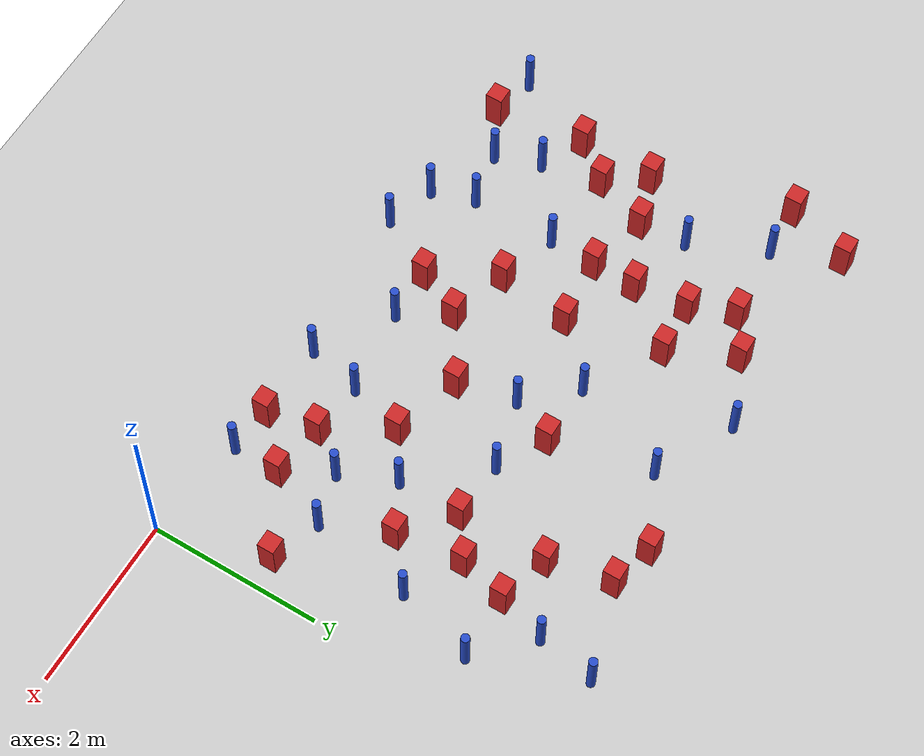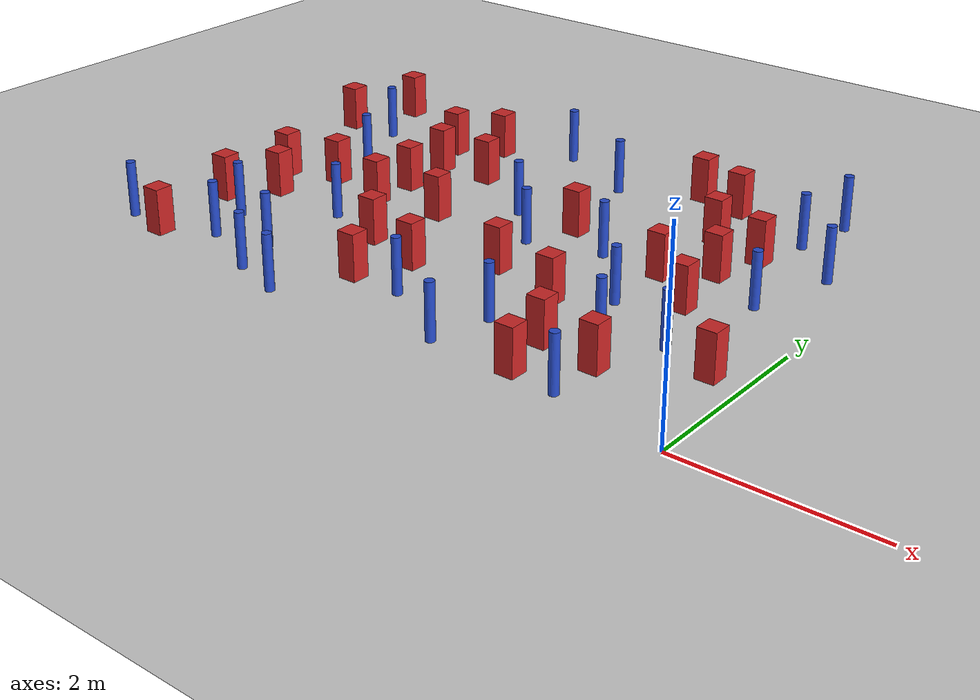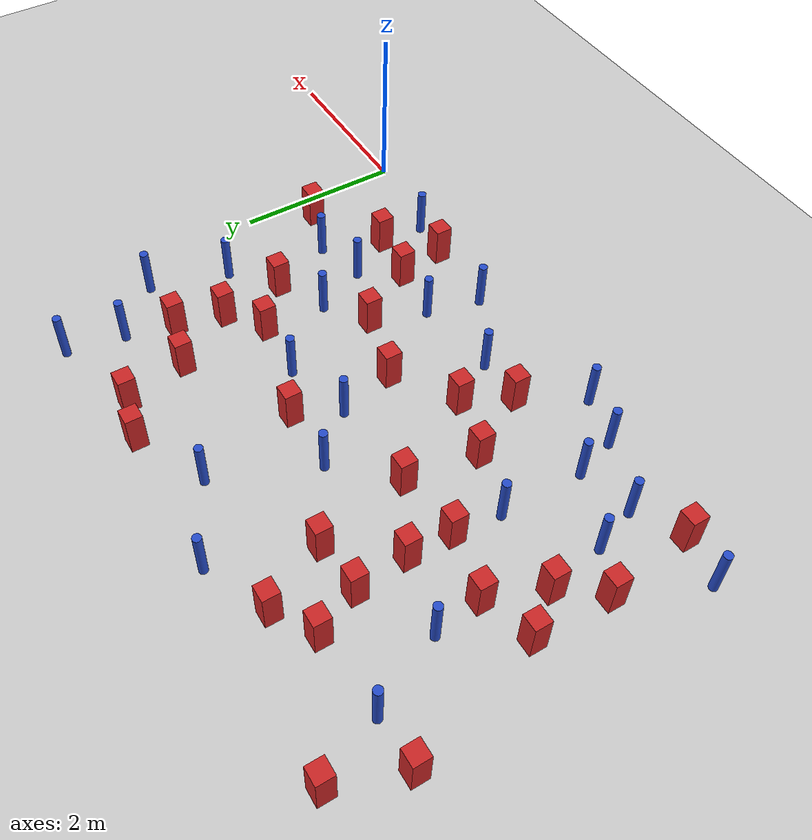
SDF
<sdf version="1.6">
 <world name="default">
  <model name="ground_plane">
   <static>1</static>
   <link name="link">
    <collision name="collision">
     <geometry><plane><normal>0 0 1</normal><size>100 100</size></plane></geometry>
     <surface><friction><ode><mu>100</mu><mu2>50</mu2></ode></friction></surface>
    </collision>
    <visual name="visual">
     <cast_shadows>0</cast_shadows>
     <geometry><plane><normal>0 0 1</normal><size>100 100</size></plane></geometry>
     <material>
      <ambient>1.0 1.0 1.0 1.0</ambient>
      <diffuse>0.8 0.8 0.8 1.0</diffuse>
      <specular>0.01 0.01 0.01 1.000000</specular>
     </material>
    </visual>
   </link>
  </model>
  <model name="square_post_obstacle3">
   <static>true</static>
   <pose>-4.63655862718 3.54686875721 8.22691968438e-08 7.2212513382e-06 -7.54495500217e-07 2.29674213826e-05</pose>
   <link name="link">
    <pose>0 0 0.25 0 -0 0</pose>
    <inertial>
     <mass>100</mass>
     <inertia>
      <ixx>0.166667</ixx>
      <ixy>0</ixy>
      <ixz>0</ixz>
      <iyy>0.166667</iyy>
      <iyz>0</iyz>
      <izz>0.166667</izz>
     </inertia>
    </inertial>
    <collision name="collision"><geometry><box><size>.2 .2 .5</size></box></geometry></collision>
    <visual name="visual">
     <geometry><box><size>.2 .2 .5</size></box></geometry>
     <material>
      <script><name>Gazebo/Red</name><uri>file://media/materials/scripts/gazebo.material</uri></script>
     </material>
    </visual>
   </link>
  </model>
  <model name="square_post_obstacle15">
   <static>true</static>
   <pose>-5.24015183878 3.50548727674 8.22691968438e-08 7.2212513382e-06 -7.54495500217e-07 2.29674213826e-05</pose>
   <link name="link">
    <pose>0 0 0.25 0 -0 0</pose>
    <inertial>
     <mass>100</mass>
     <inertia>
      <ixx>0.166667</ixx>
      <ixy>0</ixy>
      <ixz>0</ixz>
      <iyy>0.166667</iyy>
      <iyz>0</iyz>
      <izz>0.166667</izz>
     </inertia>
    </inertial>
    <collision name="collision"><geometry><box><size>.2 .2 .5</size></box></geometry></collision>
    <visual name="visual">
     <geometry><box><size>.2 .2 .5</size></box></geometry>
     <material>
      <script><name>Gazebo/Red</name><uri>file://media/materials/scripts/gazebo.material</uri></script>
     </material>
    </visual>
   </link>
  </model>
  <model name="square_post_obstacle16">
   <static>true</static>
   <pose>-3.82299562267 1.35734232729 8.22691968438e-08 7.2212513382e-06 -7.54495500217e-07 2.29674213826e-05</pose>
   <link name="link">
    <pose>0 0 0.25 0 -0 0</pose>
    <inertial>
     <mass>100</mass>
     <inertia>
      <ixx>0.166667</ixx>
      <ixy>0</ixy>
      <ixz>0</ixz>
      <iyy>0.166667</iyy>
      <iyz>0</iyz>
      <izz>0.166667</izz>
     </inertia>
    </inertial>
    <collision name="collision"><geometry><box><size>.2 .2 .5</size></box></geometry></collision>
    <visual name="visual">
     <geometry><box><size>.2 .2 .5</size></box></geometry>
     <material>
      <script><name>Gazebo/Red</name><uri>file://media/materials/scripts/gazebo.material</uri></script>
     </material>
    </visual>
   </link>
  </model>
  <model name="square_post_obstacle22">
   <static>true</static>
   <pose>-6.6949630996 4.68436542248 8.22691968438e-08 7.22125133819e-06 -7.54495500217e-07 2.29674213826e-05</pose>
   <link name="link">
    <pose>0 0 0.25 0 -0 0</pose>
    <inertial>
     <mass>100</mass>
     <inertia>
      <ixx>0.166667</ixx>
      <ixy>0</ixy>
      <ixz>0</ixz>
      <iyy>0.166667</iyy>
      <iyz>0</iyz>
      <izz>0.166667</izz>
     </inertia>
    </inertial>
    <collision name="collision"><geometry><box><size>.2 .2 .5</size></box></geometry></collision>
    <visual name="visual">
     <geometry><box><size>.2 .2 .5</size></box></geometry>
     <material>
      <script><name>Gazebo/Red</name><uri>file://media/materials/scripts/gazebo.material</uri></script>
     </material>
    </visual>
   </link>
  </model>
  <model name="pole_obstacle16">
   <static>true</static>
   <pose>-5.22550712761 1.77969088036 2.88873142074e-08 -9.90536689445e-09 4.60219948999e-07 -1.20965994956e-07</pose>
   <link name="link">
    <pose>0 0 0.3 0 -0 0</pose>
    <inertial>
     <mass>1</mass>
     <inertia><ixx>0.145833</ixx><ixy>0</ixy><ixz>0</ixz><iyy>0.145833</iyy><iyz>0</iyz><izz>0.125</izz></inertia>
    </inertial>
    <collision name="collision">
     <geometry><cylinder><radius>0.05</radius><length>.6</length></cylinder></geometry>
    </collision>
    <visual name="visual">
     <geometry><cylinder><radius>0.05</radius><length>.6</length></cylinder></geometry>
     <material>
      <script><name>Gazebo/Blue</name><uri>file://media/materials/scripts/gazebo.material</uri></script>
     </material>
    </visual>
   </link>
  </model>
  <model name="square_post_obstacle24">
   <static>true</static>
   <pose>-6.38532624722 0.36992750824 8.22691968438e-08 7.2212513382e-06 -7.54495500217e-07 2.29674213826e-05</pose>
   <link name="link">
    <pose>0 0 0.25 0 -0 0</pose>
    <inertial>
     <mass>100</mass>
     <inertia>
      <ixx>0.166667</ixx>
      <ixy>0</ixy>
      <ixz>0</ixz>
      <iyy>0.166667</iyy>
      <iyz>0</iyz>
      <izz>0.166667</izz>
     </inertia>
    </inertial>
    <collision name="collision"><geometry><box><size>.2 .2 .5</size></box></geometry></collision>
    <visual name="visual">
     <geometry><box><size>.2 .2 .5</size></box></geometry>
     <material>
      <script><name>Gazebo/Red</name><uri>file://media/materials/scripts/gazebo.material</uri></script>
     </material>
    </visual>
   </link>
  </model>
  <model name="pole_obstacle24">
   <static>true</static>
   <pose>-6.38724951136 3.94498301744 2.88873142074e-08 -9.90536690245e-09 4.6021994898e-07 -1.20965994966e-07</pose>
   <link name="link">
    <pose>0 0 0.3 0 -0 0</pose>
    <inertial>
     <mass>1</mass>
     <inertia><ixx>0.145833</ixx><ixy>0</ixy><ixz>0</ixz><iyy>0.145833</iyy><iyz>0</iyz><izz>0.125</izz></inertia>
    </inertial>
    <collision name="collision">
     <geometry><cylinder><radius>0.05</radius><length>.6</length></cylinder></geometry>
    </collision>
    <visual name="visual">
     <geometry><cylinder><radius>0.05</radius><length>.6</length></cylinder></geometry>
     <material>
      <script><name>Gazebo/Blue</name><uri>file://media/materials/scripts/gazebo.material</uri></script>
     </material>
    </visual>
   </link>
  </model>
  <model name="square_post_obstacle37">
   <static>true</static>
   <pose>-4.52123844503 1.57025443564 8.22691968438e-08 7.2212513382e-06 -7.54495500217e-07 2.29674213826e-05</pose>
   <link name="link">
    <pose>0 0 0.25 0 -0 0</pose>
    <inertial>
     <mass>100</mass>
     <inertia>
      <ixx>0.166667</ixx>
      <ixy>0</ixy>
      <ixz>0</ixz>
      <iyy>0.166667</iyy>
      <iyz>0</iyz>
      <izz>0.166667</izz>
     </inertia>
    </inertial>
    <collision name="collision"><geometry><box><size>.2 .2 .5</size></box></geometry></collision>
    <visual name="visual">
     <geometry><box><size>.2 .2 .5</size></box></geometry>
     <material>
      <script><name>Gazebo/Red</name><uri>file://media/materials/scripts/gazebo.material</uri></script>
     </material>
    </visual>
   </link>
  </model>
  <model name="square_post_obstacle53">
   <static>true</static>
   <pose>-1.79335235319 3.72912004913 8.22691968438e-08 7.2212513382e-06 -7.54495500217e-07 2.29674213826e-05</pose>
   <link name="link">
    <pose>0 0 0.25 0 -0 0</pose>
    <inertial>
     <mass>100</mass>
     <inertia>
      <ixx>0.166667</ixx>
      <ixy>0</ixy>
      <ixz>0</ixz>
      <iyy>0.166667</iyy>
      <iyz>0</iyz>
      <izz>0.166667</izz>
     </inertia>
    </inertial>
    <collision name="collision"><geometry><box><size>.2 .2 .5</size></box></geometry></collision>
    <visual name="visual">
     <geometry><box><size>.2 .2 .5</size></box></geometry>
     <material>
      <script><name>Gazebo/Red</name><uri>file://media/materials/scripts/gazebo.material</uri></script>
     </material>
    </visual>
   </link>
  </model>
  <model name="pole_obstacle55">
   <static>true</static>
   <pose>-0.719642977251 2.6480459213 2.88873142074e-08 -9.90536689636e-09 4.60219948994e-07 -1.20965994958e-07</pose>
   <link name="link">
    <pose>0 0 0.3 0 -0 0</pose>
    <inertial>
     <mass>1</mass>
     <inertia><ixx>0.145833</ixx><ixy>0</ixy><ixz>0</ixz><iyy>0.145833</iyy><iyz>0</iyz><izz>0.125</izz></inertia>
    </inertial>
    <collision name="collision">
     <geometry><cylinder><radius>0.05</radius><length>.6</length></cylinder></geometry>
    </collision>
    <visual name="visual">
     <geometry><cylinder><radius>0.05</radius><length>.6</length></cylinder></geometry>
     <material>
      <script><name>Gazebo/Blue</name><uri>file://media/materials/scripts/gazebo.material</uri></script>
     </material>
    </visual>
   </link>
  </model>
  <model name="pole_obstacle57">
   <static>true</static>
   <pose>-0.920309925064 1.45687510148 2.88873142074e-08 -9.90536689855e-09 4.60219948989e-07 -1.20965994962e-07</pose>
   <link name="link">
    <pose>0 0 0.3 0 -0 0</pose>
    <inertial>
     <mass>1</mass>
     <inertia><ixx>0.145833</ixx><ixy>0</ixy><ixz>0</ixz><iyy>0.145833</iyy><iyz>0</iyz><izz>0.125</izz></inertia>
    </inertial>
    <collision name="collision">
     <geometry><cylinder><radius>0.05</radius><length>.6</length></cylinder></geometry>
    </collision>
    <visual name="visual">
     <geometry><cylinder><radius>0.05</radius><length>.6</length></cylinder></geometry>
     <material>
      <script><name>Gazebo/Blue</name><uri>file://media/materials/scripts/gazebo.material</uri></script>
     </material>
    </visual>
   </link>
  </model>
  <model name="pole_obstacle59">
   <static>true</static>
   <pose>-3.50369283603 0.793164883033 2.88873142074e-08 -9.90536689285e-09 4.60219949002e-07 -1.20965994953e-07</pose>
   <link name="link">
    <pose>0 0 0.3 0 -0 0</pose>
    <inertial>
     <mass>1</mass>
     <inertia><ixx>0.145833</ixx><ixy>0</ixy><ixz>0</ixz><iyy>0.145833</iyy><iyz>0</iyz><izz>0.125</izz></inertia>
    </inertial>
    <collision name="collision">
     <geometry><cylinder><radius>0.05</radius><length>.6</length></cylinder></geometry>
    </collision>
    <visual name="visual">
     <geometry><cylinder><radius>0.05</radius><length>.6</length></cylinder></geometry>
     <material>
      <script><name>Gazebo/Blue</name><uri>file://media/materials/scripts/gazebo.material</uri></script>
     </material>
    </visual>
   </link>
  </model>
  <model name="square_post_obstacle67">
   <static>true</static>
   <pose>-3.03487579687 3.02186459462 8.22691968438e-08 7.2212513382e-06 -7.54495500217e-07 2.29674213826e-05</pose>
   <link name="link">
    <pose>0 0 0.25 0 -0 0</pose>
    <inertial>
     <mass>100</mass>
     <inertia>
      <ixx>0.166667</ixx>
      <ixy>0</ixy>
      <ixz>0</ixz>
      <iyy>0.166667</iyy>
      <iyz>0</iyz>
      <izz>0.166667</izz>
     </inertia>
    </inertial>
    <collision name="collision"><geometry><box><size>.2 .2 .5</size></box></geometry></collision>
    <visual name="visual">
     <geometry><box><size>.2 .2 .5</size></box></geometry>
     <material>
      <script><name>Gazebo/Red</name><uri>file://media/materials/scripts/gazebo.material</uri></script>
     </material>
    </visual>
   </link>
  </model>
  <model name="pole_obstacle67">
   <static>true</static>
   <pose>-6.92081475753 0.477294244467 2.88873142074e-08 -9.90536689483e-09 4.60219948998e-07 -1.20965994956e-07</pose>
   <link name="link">
    <pose>0 0 0.3 0 -0 0</pose>
    <inertial>
     <mass>1</mass>
     <inertia><ixx>0.145833</ixx><ixy>0</ixy><ixz>0</ixz><iyy>0.145833</iyy><iyz>0</iyz><izz>0.125</izz></inertia>
    </inertial>
    <collision name="collision">
     <geometry><cylinder><radius>0.05</radius><length>.6</length></cylinder></geometry>
    </collision>
    <visual name="visual">
     <geometry><cylinder><radius>0.05</radius><length>.6</length></cylinder></geometry>
     <material>
      <script><name>Gazebo/Blue</name><uri>file://media/materials/scripts/gazebo.material</uri></script>
     </material>
    </visual>
   </link>
  </model>
  <model name="square_post_obstacle73">
   <static>true</static>
   <pose>-1.7288285816 0.263005848458 8.22691968438e-08 7.22125133819e-06 -7.54495500217e-07 2.29674213826e-05</pose>
   <link name="link">
    <pose>0 0 0.25 0 -0 0</pose>
    <inertial>
     <mass>100</mass>
     <inertia>
      <ixx>0.166667</ixx>
      <ixy>0</ixy>
      <ixz>0</ixz>
      <iyy>0.166667</iyy>
      <iyz>0</iyz>
      <izz>0.166667</izz>
     </inertia>
    </inertial>
    <collision name="collision"><geometry><box><size>.2 .2 .5</size></box></geometry></collision>
    <visual name="visual">
     <geometry><box><size>.2 .2 .5</size></box></geometry>
     <material>
      <script><name>Gazebo/Red</name><uri>file://media/materials/scripts/gazebo.material</uri></script>
     </material>
    </visual>
   </link>
  </model>
  <model name="pole_obstacle74">
   <static>true</static>
   <pose>-4.24889739048 4.64374005165 2.88873142074e-08 -9.90536690842e-09 4.60219948965e-07 -1.20965994976e-07</pose>
   <link name="link">
    <pose>0 0 0.3 0 -0 0</pose>
    <inertial>
     <mass>1</mass>
     <inertia><ixx>0.145833</ixx><ixy>0</ixy><ixz>0</ixz><iyy>0.145833</iyy><iyz>0</iyz><izz>0.125</izz></inertia>
    </inertial>
    <collision name="collision">
     <geometry><cylinder><radius>0.05</radius><length>.6</length></cylinder></geometry>
    </collision>
    <visual name="visual">
     <geometry><cylinder><radius>0.05</radius><length>.6</length></cylinder></geometry>
     <material>
      <script><name>Gazebo/Blue</name><uri>file://media/materials/scripts/gazebo.material</uri></script>
     </material>
    </visual>
   </link>
  </model>
  <model name="pole_obstacle79">
   <static>true</static>
   <pose>-3.31451127645 4.1940585945 2.88873142074e-08 -9.90536689859e-09 4.60219948989e-07 -1.20965994961e-07</pose>
   <link name="link">
    <pose>0 0 0.3 0 -0 0</pose>
    <inertial>
     <mass>1</mass>
     <inertia><ixx>0.145833</ixx><ixy>0</ixy><ixz>0</ixz><iyy>0.145833</iyy><iyz>0</iyz><izz>0.125</izz></inertia>
    </inertial>
    <collision name="collision">
     <geometry><cylinder><radius>0.05</radius><length>.6</length></cylinder></geometry>
    </collision>
    <visual name="visual">
     <geometry><cylinder><radius>0.05</radius><length>.6</length></cylinder></geometry>
     <material>
      <script><name>Gazebo/Blue</name><uri>file://media/materials/scripts/gazebo.material</uri></script>
     </material>
    </visual>
   </link>
  </model>
  <model name="square_post_obstacle78">
   <static>true</static>
   <pose>-6.17166210652 1.87490847582 8.22691968438e-08 7.2212513382e-06 -7.54495500217e-07 2.29674213826e-05</pose>
   <link name="link">
    <pose>0 0 0.25 0 -0 0</pose>
    <inertial>
     <mass>100</mass>
     <inertia>
      <ixx>0.166667</ixx>
      <ixy>0</ixy>
      <ixz>0</ixz>
      <iyy>0.166667</iyy>
      <iyz>0</iyz>
      <izz>0.166667</izz>
     </inertia>
    </inertial>
    <collision name="collision"><geometry><box><size>.2 .2 .5</size></box></geometry></collision>
    <visual name="visual">
     <geometry><box><size>.2 .2 .5</size></box></geometry>
     <material>
      <script><name>Gazebo/Red</name><uri>file://media/materials/scripts/gazebo.material</uri></script>
     </material>
    </visual>
   </link>
  </model>
  <model name="square_post_obstacle79">
   <static>true</static>
   <pose>-1.2349886252 2.2230134717 8.22691968438e-08 7.2212513382e-06 -7.54495500217e-07 2.29674213826e-05</pose>
   <link name="link">
    <pose>0 0 0.25 0 -0 0</pose>
    <inertial>
     <mass>100</mass>
     <inertia>
      <ixx>0.166667</ixx>
      <ixy>0</ixy>
      <ixz>0</ixz>
      <iyy>0.166667</iyy>
      <iyz>0</iyz>
      <izz>0.166667</izz>
     </inertia>
    </inertial>
    <collision name="collision"><geometry><box><size>.2 .2 .5</size></box></geometry></collision>
    <visual name="visual">
     <geometry><box><size>.2 .2 .5</size></box></geometry>
     <material>
      <script><name>Gazebo/Red</name><uri>file://media/materials/scripts/gazebo.material</uri></script>
     </material>
    </visual>
   </link>
  </model>
  <model name="pole_obstacle81">
   <static>true</static>
   <pose>-1.79040666253 1.92458127733 2.88873142074e-08 -9.90536689672e-09 4.60219948993e-07 -1.20965994959e-07</pose>
   <link name="link">
    <pose>0 0 0.3 0 -0 0</pose>
    <inertial>
     <mass>1</mass>
     <inertia><ixx>0.145833</ixx><ixy>0</ixy><ixz>0</ixz><iyy>0.145833</iyy><iyz>0</iyz><izz>0.125</izz></inertia>
    </inertial>
    <collision name="collision">
     <geometry><cylinder><radius>0.05</radius><length>.6</length></cylinder></geometry>
    </collision>
    <visual name="visual">
     <geometry><cylinder><radius>0.05</radius><length>.6</length></cylinder></geometry>
     <material>
      <script><name>Gazebo/Blue</name><uri>file://media/materials/scripts/gazebo.material</uri></script>
     </material>
    </visual>
   </link>
  </model>
  <model name="square_post_obstacle80">
   <static>true</static>
   <pose>-4.40252415549 2.4362432793 8.22691968438e-08 7.2212513382e-06 -7.54495500217e-07 2.29674213826e-05</pose>
   <link name="link">
    <pose>0 0 0.25 0 -0 0</pose>
    <inertial>
     <mass>100</mass>
     <inertia>
      <ixx>0.166667</ixx>
      <ixy>0</ixy>
      <ixz>0</ixz>
      <iyy>0.166667</iyy>
      <iyz>0</iyz>
      <izz>0.166667</izz>
     </inertia>
    </inertial>
    <collision name="collision"><geometry><box><size>.2 .2 .5</size></box></geometry></collision>
    <visual name="visual">
     <geometry><box><size>.2 .2 .5</size></box></geometry>
     <material>
      <script><name>Gazebo/Red</name><uri>file://media/materials/scripts/gazebo.material</uri></script>
     </material>
    </visual>
   </link>
  </model>
  <model name="pole_obstacle88">
   <static>true</static>
   <pose>-1.51261089341 1.29583131094 2.88873142074e-08 -9.90536689672e-09 4.60219948993e-07 -1.20965994959e-07</pose>
   <link name="link">
    <pose>0 0 0.3 0 -0 0</pose>
    <inertial>
     <mass>1</mass>
     <inertia><ixx>0.145833</ixx><ixy>0</ixy><ixz>0</ixz><iyy>0.145833</iyy><iyz>0</iyz><izz>0.125</izz></inertia>
    </inertial>
    <collision name="collision">
     <geometry><cylinder><radius>0.05</radius><length>.6</length></cylinder></geometry>
    </collision>
    <visual name="visual">
     <geometry><cylinder><radius>0.05</radius><length>.6</length></cylinder></geometry>
     <material>
      <script><name>Gazebo/Blue</name><uri>file://media/materials/scripts/gazebo.material</uri></script>
     </material>
    </visual>
   </link>
  </model>
  <model name="pole_obstacle96">
   <static>true</static>
   <pose>-0.912774800326 4.80418720734 2.88873142074e-08 -9.90536689661e-09 4.60219948993e-07 -1.20965994957e-07</pose>
   <link name="link">
    <pose>0 0 0.3 0 -0 0</pose>
    <inertial>
     <mass>1</mass>
     <inertia><ixx>0.145833</ixx><ixy>0</ixy><ixz>0</ixz><iyy>0.145833</iyy><iyz>0</iyz><izz>0.125</izz></inertia>
    </inertial>
    <collision name="collision">
     <geometry><cylinder><radius>0.05</radius><length>.6</length></cylinder></geometry>
    </collision>
    <visual name="visual">
     <geometry><cylinder><radius>0.05</radius><length>.6</length></cylinder></geometry>
     <material>
      <script><name>Gazebo/Blue</name><uri>file://media/materials/scripts/gazebo.material</uri></script>
     </material>
    </visual>
   </link>
  </model>
  <model name="square_post_obstacle85">
   <static>true</static>
   <pose>-6.50095038086 2.33451242014 8.22691968438e-08 7.2212513382e-06 -7.54495500217e-07 2.29674213826e-05</pose>
   <link name="link">
    <pose>0 0 0.25 0 -0 0</pose>
    <inertial>
     <mass>100</mass>
     <inertia>
      <ixx>0.166667</ixx>
      <ixy>0</ixy>
      <ixz>0</ixz>
      <iyy>0.166667</iyy>
      <iyz>0</iyz>
      <izz>0.166667</izz>
     </inertia>
    </inertial>
    <collision name="collision"><geometry><box><size>.2 .2 .5</size></box></geometry></collision>
    <visual name="visual">
     <geometry><box><size>.2 .2 .5</size></box></geometry>
     <material>
      <script><name>Gazebo/Red</name><uri>file://media/materials/scripts/gazebo.material</uri></script>
     </material>
    </visual>
   </link>
  </model>
  <model name="pole_obstacle103">
   <static>true</static>
   <pose>-2.48072139473 2.71462574397 2.88873142074e-08 -9.90536690232e-09 4.6021994898e-07 -1.20965994968e-07</pose>
   <link name="link">
    <pose>0 0 0.3 0 -0 0</pose>
    <inertial>
     <mass>1</mass>
     <inertia><ixx>0.145833</ixx><ixy>0</ixy><ixz>0</ixz><iyy>0.145833</iyy><iyz>0</iyz><izz>0.125</izz></inertia>
    </inertial>
    <collision name="collision">
     <geometry><cylinder><radius>0.05</radius><length>.6</length></cylinder></geometry>
    </collision>
    <visual name="visual">
     <geometry><cylinder><radius>0.05</radius><length>.6</length></cylinder></geometry>
     <material>
      <script><name>Gazebo/Blue</name><uri>file://media/materials/scripts/gazebo.material</uri></script>
     </material>
    </visual>
   </link>
  </model>
  <model name="pole_obstacle105">
   <static>true</static>
   <pose>-1.2133949386 0.196896426758 2.88873142074e-08 -9.90536689986e-09 4.60219948986e-07 -1.20965994962e-07</pose>
   <link name="link">
    <pose>0 0 0.3 0 -0 0</pose>
    <inertial>
     <mass>1</mass>
     <inertia><ixx>0.145833</ixx><ixy>0</ixy><ixz>0</ixz><iyy>0.145833</iyy><iyz>0</iyz><izz>0.125</izz></inertia>
    </inertial>
    <collision name="collision">
     <geometry><cylinder><radius>0.05</radius><length>.6</length></cylinder></geometry>
    </collision>
    <visual name="visual">
     <geometry><cylinder><radius>0.05</radius><length>.6</length></cylinder></geometry>
     <material>
      <script><name>Gazebo/Blue</name><uri>file://media/materials/scripts/gazebo.material</uri></script>
     </material>
    </visual>
   </link>
  </model>
  <model name="pole_obstacle109">
   <static>true</static>
   <pose>-2.643982476 0.27305697961 2.88873142074e-08 -9.90536689488e-09 4.60219948997e-07 -1.20965994956e-07</pose>
   <link name="link">
    <pose>0 0 0.3 0 -0 0</pose>
    <inertial>
     <mass>1</mass>
     <inertia><ixx>0.145833</ixx><ixy>0</ixy><ixz>0</ixz><iyy>0.145833</iyy><iyz>0</iyz><izz>0.125</izz></inertia>
    </inertial>
    <collision name="collision">
     <geometry><cylinder><radius>0.05</radius><length>.6</length></cylinder></geometry>
    </collision>
    <visual name="visual">
     <geometry><cylinder><radius>0.05</radius><length>.6</length></cylinder></geometry>
     <material>
      <script><name>Gazebo/Blue</name><uri>file://media/materials/scripts/gazebo.material</uri></script>
     </material>
    </visual>
   </link>
  </model>
  <model name="square_post_obstacle97">
   <static>true</static>
   <pose>-3.10668395982 1.82074510027 8.22691968438e-08 7.22125133819e-06 -7.54495500217e-07 2.29674213826e-05</pose>
   <link name="link">
    <pose>0 0 0.25 0 -0 0</pose>
    <inertial>
     <mass>100</mass>
     <inertia>
      <ixx>0.166667</ixx>
      <ixy>0</ixy>
      <ixz>0</ixz>
      <iyy>0.166667</iyy>
      <iyz>0</iyz>
      <izz>0.166667</izz>
     </inertia>
    </inertial>
    <collision name="collision"><geometry><box><size>.2 .2 .5</size></box></geometry></collision>
    <visual name="visual">
     <geometry><box><size>.2 .2 .5</size></box></geometry>
     <material>
      <script><name>Gazebo/Red</name><uri>file://media/materials/scripts/gazebo.material</uri></script>
     </material>
    </visual>
   </link>
  </model>
  <model name="pole_obstacle115">
   <static>true</static>
   <pose>-3.78685906643 3.02902158172 2.88873142074e-08 -9.90536690232e-09 4.6021994898e-07 -1.20965994968e-07</pose>
   <link name="link">
    <pose>0 0 0.3 0 -0 0</pose>
    <inertial>
     <mass>1</mass>
     <inertia><ixx>0.145833</ixx><ixy>0</ixy><ixz>0</ixz><iyy>0.145833</iyy><iyz>0</iyz><izz>0.125</izz></inertia>
    </inertial>
    <collision name="collision">
     <geometry><cylinder><radius>0.05</radius><length>.6</length></cylinder></geometry>
    </collision>
    <visual name="visual">
     <geometry><cylinder><radius>0.05</radius><length>.6</length></cylinder></geometry>
     <material>
      <script><name>Gazebo/Blue</name><uri>file://media/materials/scripts/gazebo.material</uri></script>
     </material>
    </visual>
   </link>
  </model>
  <model name="square_post_obstacle108">
   <static>true</static>
   <pose>-5.18404931154 2.35040392565 8.22691968438e-08 7.2212513382e-06 -7.54495500217e-07 2.29674213826e-05</pose>
   <link name="link">
    <pose>0 0 0.25 0 -0 0</pose>
    <inertial>
     <mass>100</mass>
     <inertia>
      <ixx>0.166667</ixx>
      <ixy>0</ixy>
      <ixz>0</ixz>
      <iyy>0.166667</iyy>
      <iyz>0</iyz>
      <izz>0.166667</izz>
     </inertia>
    </inertial>
    <collision name="collision"><geometry><box><size>.2 .2 .5</size></box></geometry></collision>
    <visual name="visual">
     <geometry><box><size>.2 .2 .5</size></box></geometry>
     <material>
      <script><name>Gazebo/Red</name><uri>file://media/materials/scripts/gazebo.material</uri></script>
     </material>
    </visual>
   </link>
  </model>
  <model name="square_post_obstacle109">
   <static>true</static>
   <pose>-4.08413032773 0.809103732386 8.22691968438e-08 7.2212513382e-06 -7.54495500217e-07 2.29674213826e-05</pose>
   <link name="link">
    <pose>0 0 0.25 0 -0 0</pose>
    <inertial>
     <mass>100</mass>
     <inertia>
      <ixx>0.166667</ixx>
      <ixy>0</ixy>
      <ixz>0</ixz>
      <iyy>0.166667</iyy>
      <iyz>0</iyz>
      <izz>0.166667</izz>
     </inertia>
    </inertial>
    <collision name="collision"><geometry><box><size>.2 .2 .5</size></box></geometry></collision>
    <visual name="visual">
     <geometry><box><size>.2 .2 .5</size></box></geometry>
     <material>
      <script><name>Gazebo/Red</name><uri>file://media/materials/scripts/gazebo.material</uri></script>
     </material>
    </visual>
   </link>
  </model>
  <model name="pole_obstacle126">
   <static>true</static>
   <pose>-5.98777227381 3.07618382233 2.88873142074e-08 -9.90536690245e-09 4.6021994898e-07 -1.20965994966e-07</pose>
   <link name="link">
    <pose>0 0 0.3 0 -0 0</pose>
    <inertial>
     <mass>1</mass>
     <inertia><ixx>0.145833</ixx><ixy>0</ixy><ixz>0</ixz><iyy>0.145833</iyy><iyz>0</iyz><izz>0.125</izz></inertia>
    </inertial>
    <collision name="collision">
     <geometry><cylinder><radius>0.05</radius><length>.6</length></cylinder></geometry>
    </collision>
    <visual name="visual">
     <geometry><cylinder><radius>0.05</radius><length>.6</length></cylinder></geometry>
     <material>
      <script><name>Gazebo/Blue</name><uri>file://media/materials/scripts/gazebo.material</uri></script>
     </material>
    </visual>
   </link>
  </model>
  <model name="square_post_obstacle115">
   <static>true</static>
   <pose>-2.48188384394 4.59685044135 8.22691968438e-08 7.2212513382e-06 -7.54495500217e-07 2.29674213826e-05</pose>
   <link name="link">
    <pose>0 0 0.25 0 -0 0</pose>
    <inertial>
     <mass>100</mass>
     <inertia>
      <ixx>0.166667</ixx>
      <ixy>0</ixy>
      <ixz>0</ixz>
      <iyy>0.166667</iyy>
      <iyz>0</iyz>
      <izz>0.166667</izz>
     </inertia>
    </inertial>
    <collision name="collision"><geometry><box><size>.2 .2 .5</size></box></geometry></collision>
    <visual name="visual">
     <geometry><box><size>.2 .2 .5</size></box></geometry>
     <material>
      <script><name>Gazebo/Red</name><uri>file://media/materials/scripts/gazebo.material</uri></script>
     </material>
    </visual>
   </link>
  </model>
  <model name="pole_obstacle136">
   <static>true</static>
   <pose>-4.50453976404 0.0924048402881 2.88873142074e-08 -9.90536689727e-09 4.60219948992e-07 -1.20965994958e-07</pose>
   <link name="link">
    <pose>0 0 0.3 0 -0 0</pose>
    <inertial>
     <mass>1</mass>
     <inertia><ixx>0.145833</ixx><ixy>0</ixy><ixz>0</ixz><iyy>0.145833</iyy><iyz>0</iyz><izz>0.125</izz></inertia>
    </inertial>
    <collision name="collision">
     <geometry><cylinder><radius>0.05</radius><length>.6</length></cylinder></geometry>
    </collision>
    <visual name="visual">
     <geometry><cylinder><radius>0.05</radius><length>.6</length></cylinder></geometry>
     <material>
      <script><name>Gazebo/Blue</name><uri>file://media/materials/scripts/gazebo.material</uri></script>
     </material>
    </visual>
   </link>
  </model>
  <model name="square_post_obstacle127">
   <static>true</static>
   <pose>-6.96853815434 3.922637119 8.22691968438e-08 7.22125133819e-06 -7.54495500217e-07 2.29674213826e-05</pose>
   <link name="link">
    <pose>0 0 0.25 0 -0 0</pose>
    <inertial>
     <mass>100</mass>
     <inertia>
      <ixx>0.166667</ixx>
      <ixy>0</ixy>
      <ixz>0</ixz>
      <iyy>0.166667</iyy>
      <iyz>0</iyz>
      <izz>0.166667</izz>
     </inertia>
    </inertial>
    <collision name="collision"><geometry><box><size>.2 .2 .5</size></box></geometry></collision>
    <visual name="visual">
     <geometry><box><size>.2 .2 .5</size></box></geometry>
     <material>
      <script><name>Gazebo/Red</name><uri>file://media/materials/scripts/gazebo.material</uri></script>
     </material>
    </visual>
   </link>
  </model>
  <model name="square_post_obstacle135">
   <static>true</static>
   <pose>-5.00512210501 4.30510256007 8.22691968438e-08 7.2212513382e-06 -7.54495500217e-07 2.29674213826e-05</pose>
   <link name="link">
    <pose>0 0 0.25 0 -0 0</pose>
    <inertial>
     <mass>100</mass>
     <inertia>
      <ixx>0.166667</ixx>
      <ixy>0</ixy>
      <ixz>0</ixz>
      <iyy>0.166667</iyy>
      <iyz>0</iyz>
      <izz>0.166667</izz>
     </inertia>
    </inertial>
    <collision name="collision"><geometry><box><size>.2 .2 .5</size></box></geometry></collision>
    <visual name="visual">
     <geometry><box><size>.2 .2 .5</size></box></geometry>
     <material>
      <script><name>Gazebo/Red</name><uri>file://media/materials/scripts/gazebo.material</uri></script>
     </material>
    </visual>
   </link>
  </model>
  <model name="square_post_obstacle140">
   <static>true</static>
   <pose>-1.19911993226 3.56233909956 8.22691968438e-08 7.2212513382e-06 -7.54495500217e-07 2.29674213826e-05</pose>
   <link name="link">
    <pose>0 0 0.25 0 -0 0</pose>
    <inertial>
     <mass>100</mass>
     <inertia>
      <ixx>0.166667</ixx>
      <ixy>0</ixy>
      <ixz>0</ixz>
      <iyy>0.166667</iyy>
      <iyz>0</iyz>
      <izz>0.166667</izz>
     </inertia>
    </inertial>
    <collision name="collision"><geometry><box><size>.2 .2 .5</size></box></geometry></collision>
    <visual name="visual">
     <geometry><box><size>.2 .2 .5</size></box></geometry>
     <material>
      <script><name>Gazebo/Red</name><uri>file://media/materials/scripts/gazebo.material</uri></script>
     </material>
    </visual>
   </link>
  </model>
  <model name="pole_obstacle151">
   <static>true</static>
   <pose>-5.85734745703 0.647574492016 2.88873142074e-08 -9.90536689837e-09 4.60219948989e-07 -1.2096599496e-07</pose>
   <link name="link">
    <pose>0 0 0.3 0 -0 0</pose>
    <inertial>
     <mass>1</mass>
     <inertia><ixx>0.145833</ixx><ixy>0</ixy><ixz>0</ixz><iyy>0.145833</iyy><iyz>0</iyz><izz>0.125</izz></inertia>
    </inertial>
    <collision name="collision">
     <geometry><cylinder><radius>0.05</radius><length>.6</length></cylinder></geometry>
    </collision>
    <visual name="visual">
     <geometry><cylinder><radius>0.05</radius><length>.6</length></cylinder></geometry>
     <material>
      <script><name>Gazebo/Blue</name><uri>file://media/materials/scripts/gazebo.material</uri></script>
     </material>
    </visual>
   </link>
  </model>
  <model name="pole_obstacle160">
   <static>true</static>
   <pose>-1.03267828876 4.1267311046 2.88873142074e-08 -9.90536689792e-09 4.6021994899e-07 -1.2096599496e-07</pose>
   <link name="link">
    <pose>0 0 0.3 0 -0 0</pose>
    <inertial>
     <mass>1</mass>
     <inertia><ixx>0.145833</ixx><ixy>0</ixy><ixz>0</ixz><iyy>0.145833</iyy><iyz>0</iyz><izz>0.125</izz></inertia>
    </inertial>
    <collision name="collision">
     <geometry><cylinder><radius>0.05</radius><length>.6</length></cylinder></geometry>
    </collision>
    <visual name="visual">
     <geometry><cylinder><radius>0.05</radius><length>.6</length></cylinder></geometry>
     <material>
      <script><name>Gazebo/Blue</name><uri>file://media/materials/scripts/gazebo.material</uri></script>
     </material>
    </visual>
   </link>
  </model>
  <model name="pole_obstacle162">
   <static>true</static>
   <pose>-5.23510551137 0.778714975938 2.88873142074e-08 -9.90536689837e-09 4.60219948989e-07 -1.2096599496e-07</pose>
   <link name="link">
    <pose>0 0 0.3 0 -0 0</pose>
    <inertial>
     <mass>1</mass>
     <inertia><ixx>0.145833</ixx><ixy>0</ixy><ixz>0</ixz><iyy>0.145833</iyy><iyz>0</iyz><izz>0.125</izz></inertia>
    </inertial>
    <collision name="collision">
     <geometry><cylinder><radius>0.05</radius><length>.6</length></cylinder></geometry>
    </collision>
    <visual name="visual">
     <geometry><cylinder><radius>0.05</radius><length>.6</length></cylinder></geometry>
     <material>
      <script><name>Gazebo/Blue</name><uri>file://media/materials/scripts/gazebo.material</uri></script>
     </material>
    </visual>
   </link>
  </model>
  <model name="square_post_obstacle154">
   <static>true</static>
   <pose>-1.83961044779 0.853899981612 8.22691968438e-08 7.2212513382e-06 -7.54495500217e-07 2.29674213826e-05</pose>
   <link name="link">
    <pose>0 0 0.25 0 -0 0</pose>
    <inertial>
     <mass>100</mass>
     <inertia>
      <ixx>0.166667</ixx>
      <ixy>0</ixy>
      <ixz>0</ixz>
      <iyy>0.166667</iyy>
      <iyz>0</iyz>
      <izz>0.166667</izz>
     </inertia>
    </inertial>
    <collision name="collision"><geometry><box><size>.2 .2 .5</size></box></geometry></collision>
    <visual name="visual">
     <geometry><box><size>.2 .2 .5</size></box></geometry>
     <material>
      <script><name>Gazebo/Red</name><uri>file://media/materials/scripts/gazebo.material</uri></script>
     </material>
    </visual>
   </link>
  </model>
  <model name="pole_obstacle166">
   <static>true</static>
   <pose>-2.48657062884 0.915723214044 2.88873142074e-08 -9.90536689285e-09 4.60219949002e-07 -1.20965994953e-07</pose>
   <link name="link">
    <pose>0 0 0.3 0 -0 0</pose>
    <inertial>
     <mass>1</mass>
     <inertia><ixx>0.145833</ixx><ixy>0</ixy><ixz>0</ixz><iyy>0.145833</iyy><iyz>0</iyz><izz>0.125</izz></inertia>
    </inertial>
    <collision name="collision">
     <geometry><cylinder><radius>0.05</radius><length>.6</length></cylinder></geometry>
    </collision>
    <visual name="visual">
     <geometry><cylinder><radius>0.05</radius><length>.6</length></cylinder></geometry>
     <material>
      <script><name>Gazebo/Blue</name><uri>file://media/materials/scripts/gazebo.material</uri></script>
     </material>
    </visual>
   </link>
  </model>
  <model name="pole_obstacle183">
   <static>true</static>
   <pose>-5.0762461588 0.277323681615 2.88873142074e-08 -9.90536689883e-09 4.60219948988e-07 -1.20965994961e-07</pose>
   <link name="link">
    <pose>0 0 0.3 0 -0 0</pose>
    <inertial>
     <mass>1</mass>
     <inertia><ixx>0.145833</ixx><ixy>0</ixy><ixz>0</ixz><iyy>0.145833</iyy><iyz>0</iyz><izz>0.125</izz></inertia>
    </inertial>
    <collision name="collision">
     <geometry><cylinder><radius>0.05</radius><length>.6</length></cylinder></geometry>
    </collision>
    <visual name="visual">
     <geometry><cylinder><radius>0.05</radius><length>.6</length></cylinder></geometry>
     <material>
      <script><name>Gazebo/Blue</name><uri>file://media/materials/scripts/gazebo.material</uri></script>
     </material>
    </visual>
   </link>
  </model>
  <model name="pole_obstacle186">
   <static>true</static>
   <pose>-0.45341584337 3.56816219546 2.88873142074e-08 -9.90536689335e-09 4.60219949001e-07 -1.20965994953e-07</pose>
   <link name="link">
    <pose>0 0 0.3 0 -0 0</pose>
    <inertial>
     <mass>1</mass>
     <inertia><ixx>0.145833</ixx><ixy>0</ixy><ixz>0</ixz><iyy>0.145833</iyy><iyz>0</iyz><izz>0.125</izz></inertia>
    </inertial>
    <collision name="collision">
     <geometry><cylinder><radius>0.05</radius><length>.6</length></cylinder></geometry>
    </collision>
    <visual name="visual">
     <geometry><cylinder><radius>0.05</radius><length>.6</length></cylinder></geometry>
     <material>
      <script><name>Gazebo/Blue</name><uri>file://media/materials/scripts/gazebo.material</uri></script>
     </material>
    </visual>
   </link>
  </model>
  <model name="square_post_obstacle179">
   <static>true</static>
   <pose>-6.52680261235 1.42994523384 8.22691968438e-08 7.2212513382e-06 -7.54495500217e-07 2.29674213826e-05</pose>
   <link name="link">
    <pose>0 0 0.25 0 -0 0</pose>
    <inertial>
     <mass>100</mass>
     <inertia>
      <ixx>0.166667</ixx>
      <ixy>0</ixy>
      <ixz>0</ixz>
      <iyy>0.166667</iyy>
      <iyz>0</iyz>
      <izz>0.166667</izz>
     </inertia>
    </inertial>
    <collision name="collision"><geometry><box><size>.2 .2 .5</size></box></geometry></collision>
    <visual name="visual">
     <geometry><box><size>.2 .2 .5</size></box></geometry>
     <material>
      <script><name>Gazebo/Red</name><uri>file://media/materials/scripts/gazebo.material</uri></script>
     </material>
    </visual>
   </link>
  </model>
  <model name="square_post_obstacle190">
   <static>true</static>
   <pose>-0.339102634479 1.26026787588 8.22691968438e-08 7.2212513382e-06 -7.54495500217e-07 2.29674213826e-05</pose>
   <link name="link">
    <pose>0 0 0.25 0 -0 0</pose>
    <inertial>
     <mass>100</mass>
     <inertia>
      <ixx>0.166667</ixx>
      <ixy>0</ixy>
      <ixz>0</ixz>
      <iyy>0.166667</iyy>
      <iyz>0</iyz>
      <izz>0.166667</izz>
     </inertia>
    </inertial>
    <collision name="collision"><geometry><box><size>.2 .2 .5</size></box></geometry></collision>
    <visual name="visual">
     <geometry><box><size>.2 .2 .5</size></box></geometry>
     <material>
      <script><name>Gazebo/Red</name><uri>file://media/materials/scripts/gazebo.material</uri></script>
     </material>
    </visual>
   </link>
  </model>
  <model name="square_post_obstacle203">
   <static>true</static>
   <pose>-5.91893669934 2.5250664569 8.22691968438e-08 7.2212513382e-06 -7.54495500217e-07 2.29674213826e-05</pose>
   <link name="link">
    <pose>0 0 0.25 0 -0 0</pose>
    <inertial>
     <mass>100</mass>
     <inertia>
      <ixx>0.166667</ixx>
      <ixy>0</ixy>
      <ixz>0</ixz>
      <iyy>0.166667</iyy>
      <iyz>0</iyz>
      <izz>0.166667</izz>
     </inertia>
    </inertial>
    <collision name="collision"><geometry><box><size>.2 .2 .5</size></box></geometry></collision>
    <visual name="visual">
     <geometry><box><size>.2 .2 .5</size></box></geometry>
     <material>
      <script><name>Gazebo/Red</name><uri>file://media/materials/scripts/gazebo.material</uri></script>
     </material>
    </visual>
   </link>
  </model>
  <model name="pole_obstacle193">
   <static>true</static>
   <pose>-6.04143132201 1.16934297964 2.88873142074e-08 -9.90536689445e-09 4.60219948999e-07 -1.20965994956e-07</pose>
   <link name="link">
    <pose>0 0 0.3 0 -0 0</pose>
    <inertial>
     <mass>1</mass>
     <inertia><ixx>0.145833</ixx><ixy>0</ixy><ixz>0</ixz><iyy>0.145833</iyy><iyz>0</iyz><izz>0.125</izz></inertia>
    </inertial>
    <collision name="collision">
     <geometry><cylinder><radius>0.05</radius><length>.6</length></cylinder></geometry>
    </collision>
    <visual name="visual">
     <geometry><cylinder><radius>0.05</radius><length>.6</length></cylinder></geometry>
     <material>
      <script><name>Gazebo/Blue</name><uri>file://media/materials/scripts/gazebo.material</uri></script>
     </material>
    </visual>
   </link>
  </model>
  <model name="pole_obstacle197">
   <static>true</static>
   <pose>-3.27717822625 2.49802831808 2.88873142074e-08 -9.90536689597e-09 4.60219948995e-07 -1.20965994957e-07</pose>
   <link name="link">
    <pose>0 0 0.3 0 -0 0</pose>
    <inertial>
     <mass>1</mass>
     <inertia><ixx>0.145833</ixx><ixy>0</ixy><ixz>0</ixz><iyy>0.145833</iyy><iyz>0</iyz><izz>0.125</izz></inertia>
    </inertial>
    <collision name="collision">
     <geometry><cylinder><radius>0.05</radius><length>.6</length></cylinder></geometry>
    </collision>
    <visual name="visual">
     <geometry><cylinder><radius>0.05</radius><length>.6</length></cylinder></geometry>
     <material>
      <script><name>Gazebo/Blue</name><uri>file://media/materials/scripts/gazebo.material</uri></script>
     </material>
    </visual>
   </link>
  </model>
  <model name="square_post_obstacle205">
   <static>true</static>
   <pose>-1.96671005867 4.46698231968 8.22691968438e-08 7.2212513382e-06 -7.54495500217e-07 2.29674213826e-05</pose>
   <link name="link">
    <pose>0 0 0.25 0 -0 0</pose>
    <inertial>
     <mass>100</mass>
     <inertia>
      <ixx>0.166667</ixx>
      <ixy>0</ixy>
      <ixz>0</ixz>
      <iyy>0.166667</iyy>
      <iyz>0</iyz>
      <izz>0.166667</izz>
     </inertia>
    </inertial>
    <collision name="collision"><geometry><box><size>.2 .2 .5</size></box></geometry></collision>
    <visual name="visual">
     <geometry><box><size>.2 .2 .5</size></box></geometry>
     <material>
      <script><name>Gazebo/Red</name><uri>file://media/materials/scripts/gazebo.material</uri></script>
     </material>
    </visual>
   </link>
  </model>
  <model name="square_post_obstacle208">
   <static>true</static>
   <pose>-2.29300303442 1.58479601079 8.22691968438e-08 7.2212513382e-06 -7.54495500217e-07 2.29674213826e-05</pose>
   <link name="link">
    <pose>0 0 0.25 0 -0 0</pose>
    <inertial>
     <mass>100</mass>
     <inertia>
      <ixx>0.166667</ixx>
      <ixy>0</ixy>
      <ixz>0</ixz>
      <iyy>0.166667</iyy>
      <iyz>0</iyz>
      <izz>0.166667</izz>
     </inertia>
    </inertial>
    <collision name="collision"><geometry><box><size>.2 .2 .5</size></box></geometry></collision>
    <visual name="visual">
     <geometry><box><size>.2 .2 .5</size></box></geometry>
     <material>
      <script><name>Gazebo/Red</name><uri>file://media/materials/scripts/gazebo.material</uri></script>
     </material>
    </visual>
   </link>
  </model>
  <model name="square_post_obstacle211">
   <static>true</static>
   <pose>-1.3446012478 2.99975321289 8.22691968438e-08 7.2212513382e-06 -7.54495500217e-07 2.29674213826e-05</pose>
   <link name="link">
    <pose>0 0 0.25 0 -0 0</pose>
    <inertial>
     <mass>100</mass>
     <inertia>
      <ixx>0.166667</ixx>
      <ixy>0</ixy>
      <ixz>0</ixz>
      <iyy>0.166667</iyy>
      <iyz>0</iyz>
      <izz>0.166667</izz>
     </inertia>
    </inertial>
    <collision name="collision"><geometry><box><size>.2 .2 .5</size></box></geometry></collision>
    <visual name="visual">
     <geometry><box><size>.2 .2 .5</size></box></geometry>
     <material>
      <script><name>Gazebo/Red</name><uri>file://media/materials/scripts/gazebo.material</uri></script>
     </material>
    </visual>
   </link>
  </model>
  <model name="square_post_obstacle223">
   <static>true</static>
   <pose>-1.7850277704 2.68315065396 8.22691968438e-08 7.2212513382e-06 -7.54495500217e-07 2.29674213826e-05</pose>
   <link name="link">
    <pose>0 0 0.25 0 -0 0</pose>
    <inertial>
     <mass>100</mass>
     <inertia>
      <ixx>0.166667</ixx>
      <ixy>0</ixy>
      <ixz>0</ixz>
      <iyy>0.166667</iyy>
      <iyz>0</iyz>
      <izz>0.166667</izz>
     </inertia>
    </inertial>
    <collision name="collision"><geometry><box><size>.2 .2 .5</size></box></geometry></collision>
    <visual name="visual">
     <geometry><box><size>.2 .2 .5</size></box></geometry>
     <material>
      <script><name>Gazebo/Red</name><uri>file://media/materials/scripts/gazebo.material</uri></script>
     </material>
    </visual>
   </link>
  </model>
  <model name="square_post_obstacle236">
   <static>true</static>
   <pose>-5.46182996738 4.02199996466 8.22691968438e-08 7.22125133819e-06 -7.54495500217e-07 2.29674213826e-05</pose>
   <link name="link">
    <pose>0 0 0.25 0 -0 0</pose>
    <inertial>
     <mass>100</mass>
     <inertia>
      <ixx>0.166667</ixx>
      <ixy>0</ixy>
      <ixz>0</ixz>
      <iyy>0.166667</iyy>
      <iyz>0</iyz>
      <izz>0.166667</izz>
     </inertia>
    </inertial>
    <collision name="collision"><geometry><box><size>.2 .2 .5</size></box></geometry></collision>
    <visual name="visual">
     <geometry><box><size>.2 .2 .5</size></box></geometry>
     <material>
      <script><name>Gazebo/Red</name><uri>file://media/materials/scripts/gazebo.material</uri></script>
     </material>
    </visual>
   </link>
  </model>
  <model name="square_post_obstacle239">
   <static>true</static>
   <pose>-5.17196996738 2.87452996466 8.22691968438e-08 7.2212513382e-06 -7.54495500217e-07 2.29674213826e-05</pose>
   <link name="link">
    <pose>0 0 0.25 0 -0 0</pose>
    <inertial>
     <mass>100</mass>
     <inertia>
      <ixx>0.166667</ixx>
      <ixy>0</ixy>
      <ixz>0</ixz>
      <iyy>0.166667</iyy>
      <iyz>0</iyz>
      <izz>0.166667</izz>
     </inertia>
    </inertial>
    <collision name="collision"><geometry><box><size>.2 .2 .5</size></box></geometry></collision>
    <visual name="visual">
     <geometry><box><size>.2 .2 .5</size></box></geometry>
     <material>
      <script><name>Gazebo/Red</name><uri>file://media/materials/scripts/gazebo.material</uri></script>
     </material>
    </visual>
   </link>
  </model>
  <model name="square_post_obstacle246">
   <static>true</static>
   <pose>-1.20101996738 0.759811964659 8.22691968438e-08 7.2212513382e-06 -7.54495500217e-07 2.29674213826e-05</pose>
   <link name="link">
    <pose>0 0 0.25 0 -0 0</pose>
    <inertial>
     <mass>100</mass>
     <inertia>
      <ixx>0.166667</ixx>
      <ixy>0</ixy>
      <ixz>0</ixz>
      <iyy>0.166667</iyy>
      <iyz>0</iyz>
      <izz>0.166667</izz>
     </inertia>
    </inertial>
    <collision name="collision"><geometry><box><size>.2 .2 .5</size></box></geometry></collision>
    <visual name="visual">
     <geometry><box><size>.2 .2 .5</size></box></geometry>
     <material>
      <script><name>Gazebo/Red</name><uri>file://media/materials/scripts/gazebo.material</uri></script>
     </material>
    </visual>
   </link>
  </model>
 </world>
</sdf>
